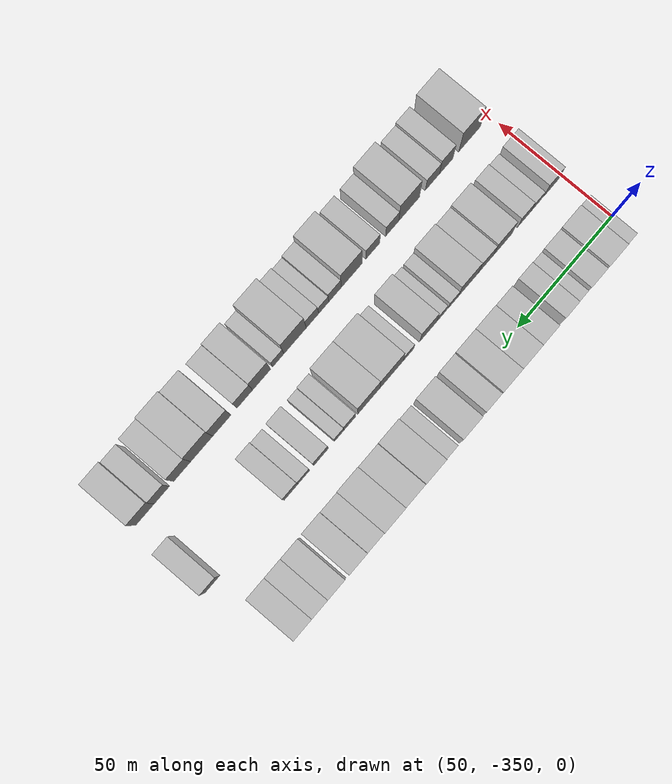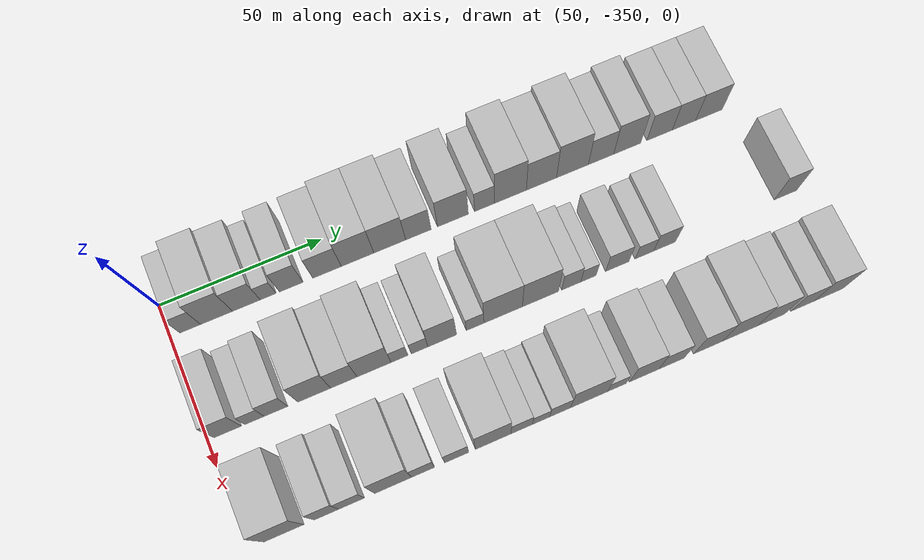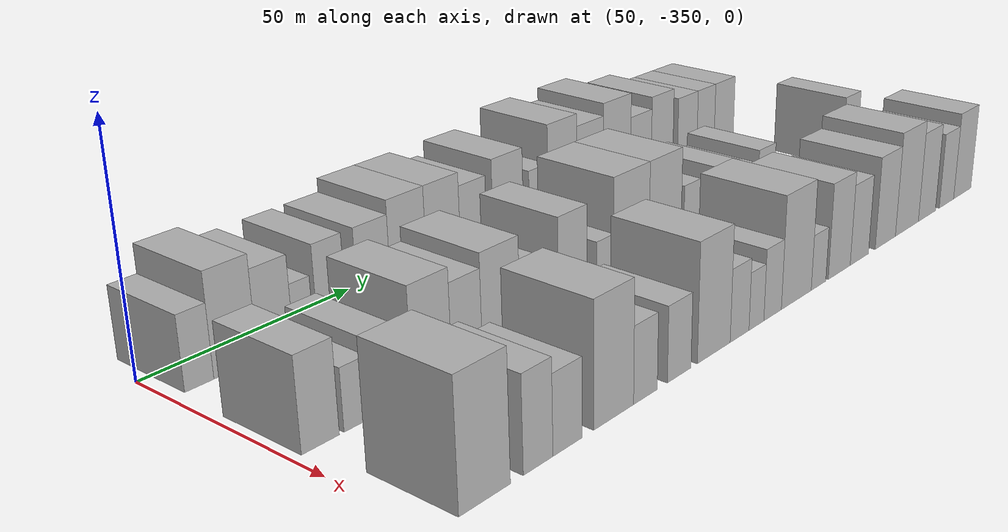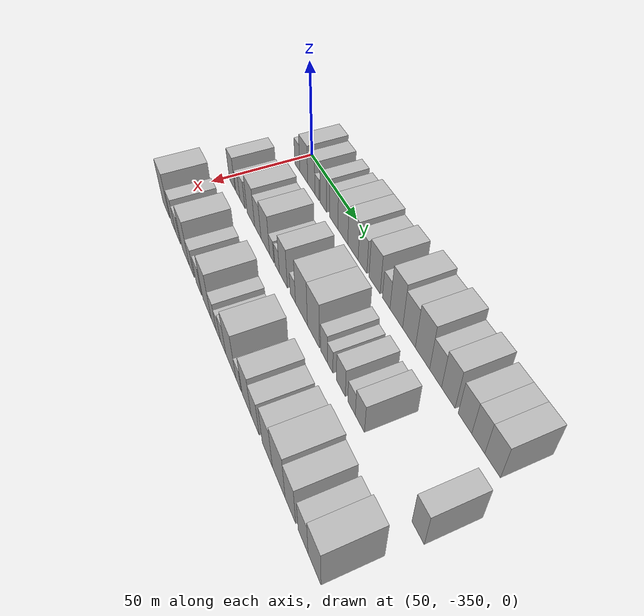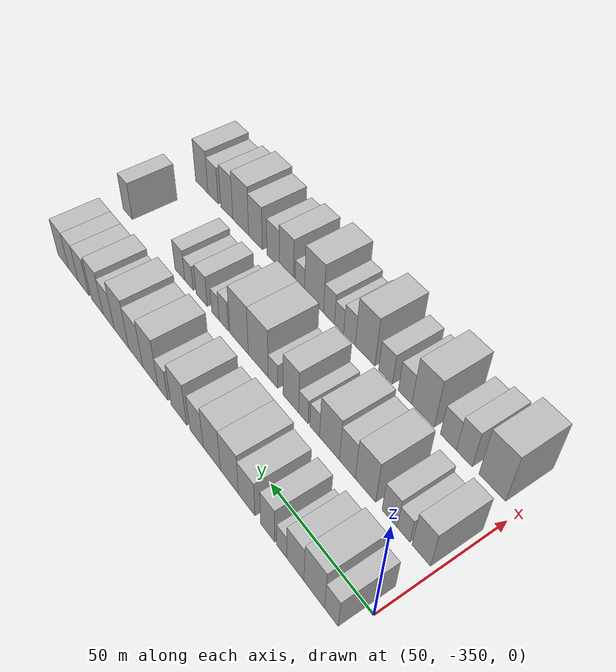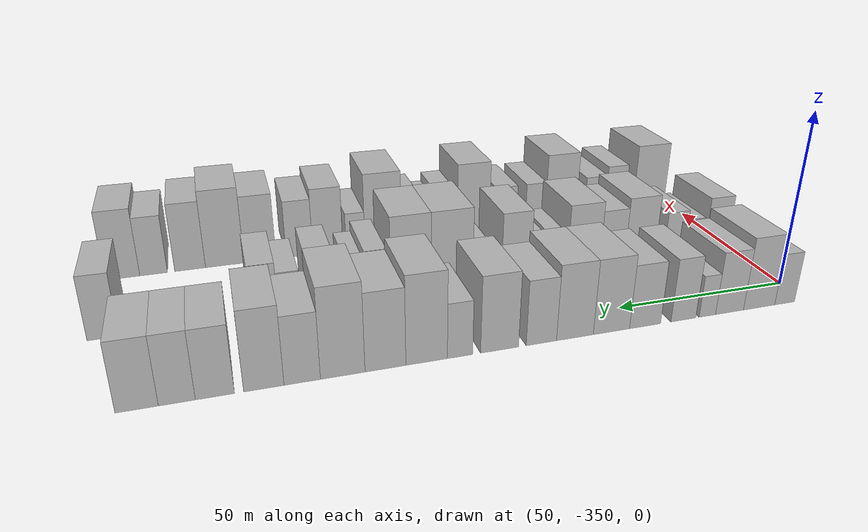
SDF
<sdf version="1.6">
 <world name="default">
  <model name="building_1">
   <static>1</static>
   <pose>50.0000 -343.8874 0 0.000000 0.000000 0.000000</pose>
   <link name="link">
    <pose>0 0 7.50 0 0 0</pose>
    <collision name="collision"><geometry><box><size>20.0000 6.2253 15.0000</size></box></geometry></collision>
    <visual name="visual">
     <cast_shadows>0</cast_shadows>
     <geometry><box><size>20.0000 6.2253 15.0000</size></box></geometry>
     <material>
      <script>
       <uri>model://HANNAS_wall/materials/scripts</uri>
       <uri>model://HANNAS_wall/materials/textures</uri>
       <name>vrc/HANNAS_wall</name>
      </script>
     </material>
    </visual>
   </link>
  </model>
  <model name="building_2">
   <static>1</static>
   <pose>50.0000 -335.9303 0 0.000000 0.000000 0.000000</pose>
   <link name="link">
    <pose>0 0 10.50 0 0 0</pose>
    <collision name="collision"><geometry><box><size>20.0000 9.6890 21.0000</size></box></geometry></collision>
    <visual name="visual">
     <cast_shadows>0</cast_shadows>
     <geometry><box><size>20.0000 9.6890 21.0000</size></box></geometry>
     <material>
      <script>
       <uri>model://HANNAS_wall/materials/scripts</uri>
       <uri>model://HANNAS_wall/materials/textures</uri>
       <name>vrc/HANNAS_wall</name>
      </script>
     </material>
    </visual>
   </link>
  </model>
  <model name="building_3">
   <static>1</static>
   <pose>50.0000 -326.8503 0 0.000000 0.000000 0.000000</pose>
   <link name="link">
    <pose>0 0 9.00 0 0 0</pose>
    <collision name="collision"><geometry><box><size>20.0000 8.4710 18.0000</size></box></geometry></collision>
    <visual name="visual">
     <cast_shadows>0</cast_shadows>
     <geometry><box><size>20.0000 8.4710 18.0000</size></box></geometry>
     <material>
      <script>
       <uri>model://HANNAS_wall/materials/scripts</uri>
       <uri>model://HANNAS_wall/materials/textures</uri>
       <name>vrc/HANNAS_wall</name>
      </script>
     </material>
    </visual>
   </link>
  </model>
  <model name="building_4">
   <static>1</static>
   <pose>50.0000 -320.1682 0 0.000000 0.000000 0.000000</pose>
   <link name="link">
    <pose>0 0 6.00 0 0 0</pose>
    <collision name="collision"><geometry><box><size>20.0000 4.8932 12.0000</size></box></geometry></collision>
    <visual name="visual">
     <cast_shadows>0</cast_shadows>
     <geometry><box><size>20.0000 4.8932 12.0000</size></box></geometry>
     <material>
      <script>
       <uri>model://HANNAS_wall/materials/scripts</uri>
       <uri>model://HANNAS_wall/materials/textures</uri>
       <name>vrc/HANNAS_wall</name>
      </script>
     </material>
    </visual>
   </link>
  </model>
  <model name="building_5">
   <static>1</static>
   <pose>50.0000 -313.0852 0 0.000000 0.000000 0.000000</pose>
   <link name="link">
    <pose>0 0 9.00 0 0 0</pose>
    <collision name="collision"><geometry><box><size>20.0000 7.2727 18.0000</size></box></geometry></collision>
    <visual name="visual">
     <cast_shadows>0</cast_shadows>
     <geometry><box><size>20.0000 7.2727 18.0000</size></box></geometry>
     <material>
      <script>
       <uri>model://HANNAS_wall/materials/scripts</uri>
       <uri>model://HANNAS_wall/materials/textures</uri>
       <name>vrc/HANNAS_wall</name>
      </script>
     </material>
    </visual>
   </link>
  </model>
  <model name="building_6">
   <static>1</static>
   <pose>50.0000 -302.0077 0 0.000000 0.000000 0.000000</pose>
   <link name="link">
    <pose>0 0 9.00 0 0 0</pose>
    <collision name="collision"><geometry><box><size>20.0000 8.8823 18.0000</size></box></geometry></collision>
    <visual name="visual">
     <cast_shadows>0</cast_shadows>
     <geometry><box><size>20.0000 8.8823 18.0000</size></box></geometry>
     <material>
      <script>
       <uri>model://HANNAS_wall/materials/scripts</uri>
       <uri>model://HANNAS_wall/materials/textures</uri>
       <name>vrc/HANNAS_wall</name>
      </script>
     </material>
    </visual>
   </link>
  </model>
  <model name="building_7">
   <static>1</static>
   <pose>50.0000 -292.5127 0 0.000000 0.000000 0.000000</pose>
   <link name="link">
    <pose>0 0 10.50 0 0 0</pose>
    <collision name="collision"><geometry><box><size>20.0000 10.1076 21.0000</size></box></geometry></collision>
    <visual name="visual">
     <cast_shadows>0</cast_shadows>
     <geometry><box><size>20.0000 10.1076 21.0000</size></box></geometry>
     <material>
      <script>
       <uri>model://HANNAS_wall/materials/scripts</uri>
       <uri>model://HANNAS_wall/materials/textures</uri>
       <name>vrc/HANNAS_wall</name>
      </script>
     </material>
    </visual>
   </link>
  </model>
  <model name="building_8">
   <static>1</static>
   <pose>50.0000 -282.4507 0 0.000000 0.000000 0.000000</pose>
   <link name="link">
    <pose>0 0 10.50 0 0 0</pose>
    <collision name="collision"><geometry><box><size>20.0000 10.0166 21.0000</size></box></geometry></collision>
    <visual name="visual">
     <cast_shadows>0</cast_shadows>
     <geometry><box><size>20.0000 10.0166 21.0000</size></box></geometry>
     <material>
      <script>
       <uri>model://HANNAS_wall/materials/scripts</uri>
       <uri>model://HANNAS_wall/materials/textures</uri>
       <name>vrc/HANNAS_wall</name>
      </script>
     </material>
    </visual>
   </link>
  </model>
  <model name="building_9">
   <static>1</static>
   <pose>50.0000 -273.4089 0 0.000000 0.000000 0.000000</pose>
   <link name="link">
    <pose>0 0 9.00 0 0 0</pose>
    <collision name="collision"><geometry><box><size>20.0000 8.0670 18.0000</size></box></geometry></collision>
    <visual name="visual">
     <cast_shadows>0</cast_shadows>
     <geometry><box><size>20.0000 8.0670 18.0000</size></box></geometry>
     <material>
      <script>
       <uri>model://HANNAS_wall/materials/scripts</uri>
       <uri>model://HANNAS_wall/materials/textures</uri>
       <name>vrc/HANNAS_wall</name>
      </script>
     </material>
    </visual>
   </link>
  </model>
  <model name="building_10">
   <static>1</static>
   <pose>50.0000 -262.4600 0 0.000000 0.000000 0.000000</pose>
   <link name="link">
    <pose>0 0 10.50 0 0 0</pose>
    <collision name="collision"><geometry><box><size>20.0000 9.8308 21.0000</size></box></geometry></collision>
    <visual name="visual">
     <cast_shadows>0</cast_shadows>
     <geometry><box><size>20.0000 9.8308 21.0000</size></box></geometry>
     <material>
      <script>
       <uri>model://HANNAS_wall/materials/scripts</uri>
       <uri>model://HANNAS_wall/materials/textures</uri>
       <name>vrc/HANNAS_wall</name>
      </script>
     </material>
    </visual>
   </link>
  </model>
  <model name="building_11">
   <static>1</static>
   <pose>50.0000 -252.3469 0 0.000000 0.000000 0.000000</pose>
   <link name="link">
    <pose>0 0 7.50 0 0 0</pose>
    <collision name="collision"><geometry><box><size>20.0000 6.3953 15.0000</size></box></geometry></collision>
    <visual name="visual">
     <cast_shadows>0</cast_shadows>
     <geometry><box><size>20.0000 6.3953 15.0000</size></box></geometry>
     <material>
      <script>
       <uri>model://HANNAS_wall/materials/scripts</uri>
       <uri>model://HANNAS_wall/materials/textures</uri>
       <name>vrc/HANNAS_wall</name>
      </script>
     </material>
    </visual>
   </link>
  </model>
  <model name="building_12">
   <static>1</static>
   <pose>50.0000 -244.0299 0 0.000000 0.000000 0.000000</pose>
   <link name="link">
    <pose>0 0 12.00 0 0 0</pose>
    <collision name="collision"><geometry><box><size>20.0000 10.2387 24.0000</size></box></geometry></collision>
    <visual name="visual">
     <cast_shadows>0</cast_shadows>
     <geometry><box><size>20.0000 10.2387 24.0000</size></box></geometry>
     <material>
      <script>
       <uri>model://HANNAS_wall/materials/scripts</uri>
       <uri>model://HANNAS_wall/materials/textures</uri>
       <name>vrc/HANNAS_wall</name>
      </script>
     </material>
    </visual>
   </link>
  </model>
  <model name="building_13">
   <static>1</static>
   <pose>50.0000 -234.0104 0 0.000000 0.000000 0.000000</pose>
   <link name="link">
    <pose>0 0 10.50 0 0 0</pose>
    <collision name="collision"><geometry><box><size>20.0000 9.8004 21.0000</size></box></geometry></collision>
    <visual name="visual">
     <cast_shadows>0</cast_shadows>
     <geometry><box><size>20.0000 9.8004 21.0000</size></box></geometry>
     <material>
      <script>
       <uri>model://HANNAS_wall/materials/scripts</uri>
       <uri>model://HANNAS_wall/materials/textures</uri>
       <name>vrc/HANNAS_wall</name>
      </script>
     </material>
    </visual>
   </link>
  </model>
  <model name="building_14">
   <static>1</static>
   <pose>50.0000 -223.8945 0 0.000000 0.000000 0.000000</pose>
   <link name="link">
    <pose>0 0 12.00 0 0 0</pose>
    <collision name="collision"><geometry><box><size>20.0000 10.4314 24.0000</size></box></geometry></collision>
    <visual name="visual">
     <cast_shadows>0</cast_shadows>
     <geometry><box><size>20.0000 10.4314 24.0000</size></box></geometry>
     <material>
      <script>
       <uri>model://HANNAS_wall/materials/scripts</uri>
       <uri>model://HANNAS_wall/materials/textures</uri>
       <name>vrc/HANNAS_wall</name>
      </script>
     </material>
    </visual>
   </link>
  </model>
  <model name="building_15">
   <static>1</static>
   <pose>50.0000 -214.5251 0 0.000000 0.000000 0.000000</pose>
   <link name="link">
    <pose>0 0 9.00 0 0 0</pose>
    <collision name="collision"><geometry><box><size>20.0000 8.3074 18.0000</size></box></geometry></collision>
    <visual name="visual">
     <cast_shadows>0</cast_shadows>
     <geometry><box><size>20.0000 8.3074 18.0000</size></box></geometry>
     <material>
      <script>
       <uri>model://HANNAS_wall/materials/scripts</uri>
       <uri>model://HANNAS_wall/materials/textures</uri>
       <name>vrc/HANNAS_wall</name>
      </script>
     </material>
    </visual>
   </link>
  </model>
  <model name="building_16">
   <static>1</static>
   <pose>50.0000 -205.8748 0 0.000000 0.000000 0.000000</pose>
   <link name="link">
    <pose>0 0 10.50 0 0 0</pose>
    <collision name="collision"><geometry><box><size>20.0000 8.9932 21.0000</size></box></geometry></collision>
    <visual name="visual">
     <cast_shadows>0</cast_shadows>
     <geometry><box><size>20.0000 8.9932 21.0000</size></box></geometry>
     <material>
      <script>
       <uri>model://HANNAS_wall/materials/scripts</uri>
       <uri>model://HANNAS_wall/materials/textures</uri>
       <name>vrc/HANNAS_wall</name>
      </script>
     </material>
    </visual>
   </link>
  </model>
  <model name="building_17">
   <static>1</static>
   <pose>50.0000 -195.1468 0 0.000000 0.000000 0.000000</pose>
   <link name="link">
    <pose>0 0 9.00 0 0 0</pose>
    <collision name="collision"><geometry><box><size>20.0000 8.4629 18.0000</size></box></geometry></collision>
    <visual name="visual">
     <cast_shadows>0</cast_shadows>
     <geometry><box><size>20.0000 8.4629 18.0000</size></box></geometry>
     <material>
      <script>
       <uri>model://HANNAS_wall/materials/scripts</uri>
       <uri>model://HANNAS_wall/materials/textures</uri>
       <name>vrc/HANNAS_wall</name>
      </script>
     </material>
    </visual>
   </link>
  </model>
  <model name="building_18">
   <static>1</static>
   <pose>50.0000 -187.0076 0 0.000000 0.000000 0.000000</pose>
   <link name="link">
    <pose>0 0 9.00 0 0 0</pose>
    <collision name="collision"><geometry><box><size>20.0000 7.8156 18.0000</size></box></geometry></collision>
    <visual name="visual">
     <cast_shadows>0</cast_shadows>
     <geometry><box><size>20.0000 7.8156 18.0000</size></box></geometry>
     <material>
      <script>
       <uri>model://HANNAS_wall/materials/scripts</uri>
       <uri>model://HANNAS_wall/materials/textures</uri>
       <name>vrc/HANNAS_wall</name>
      </script>
     </material>
    </visual>
   </link>
  </model>
  <model name="building_19">
   <static>1</static>
   <pose>50.0000 -178.6172 0 0.000000 0.000000 0.000000</pose>
   <link name="link">
    <pose>0 0 9.00 0 0 0</pose>
    <collision name="collision"><geometry><box><size>20.0000 8.9651 18.0000</size></box></geometry></collision>
    <visual name="visual">
     <cast_shadows>0</cast_shadows>
     <geometry><box><size>20.0000 8.9651 18.0000</size></box></geometry>
     <material>
      <script>
       <uri>model://HANNAS_wall/materials/scripts</uri>
       <uri>model://HANNAS_wall/materials/textures</uri>
       <name>vrc/HANNAS_wall</name>
      </script>
     </material>
    </visual>
   </link>
  </model>
  <model name="building_78">
   <static>1</static>
   <pose>82.0000 -343.9488 0 0.000000 0.000000 0.000000</pose>
   <link name="link">
    <pose>0 0 9.00 0 0 0</pose>
    <collision name="collision"><geometry><box><size>20.0000 8.1023 18.0000</size></box></geometry></collision>
    <visual name="visual">
     <cast_shadows>0</cast_shadows>
     <geometry><box><size>20.0000 8.1023 18.0000</size></box></geometry>
     <material>
      <script>
       <uri>model://HANNAS_wall/materials/scripts</uri>
       <uri>model://HANNAS_wall/materials/textures</uri>
       <name>vrc/HANNAS_wall</name>
      </script>
     </material>
    </visual>
   </link>
  </model>
  <model name="building_79">
   <static>1</static>
   <pose>82.0000 -336.0354 0 0.000000 0.000000 0.000000</pose>
   <link name="link">
    <pose>0 0 6.00 0 0 0</pose>
    <collision name="collision"><geometry><box><size>20.0000 5.7244 12.0000</size></box></geometry></collision>
    <visual name="visual">
     <cast_shadows>0</cast_shadows>
     <geometry><box><size>20.0000 5.7244 12.0000</size></box></geometry>
     <material>
      <script>
       <uri>model://HANNAS_wall/materials/scripts</uri>
       <uri>model://HANNAS_wall/materials/textures</uri>
       <name>vrc/HANNAS_wall</name>
      </script>
     </material>
    </visual>
   </link>
  </model>
  <model name="building_80">
   <static>1</static>
   <pose>82.0000 -329.6624 0 0.000000 0.000000 0.000000</pose>
   <link name="link">
    <pose>0 0 7.50 0 0 0</pose>
    <collision name="collision"><geometry><box><size>20.0000 7.0216 15.0000</size></box></geometry></collision>
    <visual name="visual">
     <cast_shadows>0</cast_shadows>
     <geometry><box><size>20.0000 7.0216 15.0000</size></box></geometry>
     <material>
      <script>
       <uri>model://HANNAS_wall/materials/scripts</uri>
       <uri>model://HANNAS_wall/materials/textures</uri>
       <name>vrc/HANNAS_wall</name>
      </script>
     </material>
    </visual>
   </link>
  </model>
  <model name="building_81">
   <static>1</static>
   <pose>82.0000 -318.2082 0 0.000000 0.000000 0.000000</pose>
   <link name="link">
    <pose>0 0 10.50 0 0 0</pose>
    <collision name="collision"><geometry><box><size>20.0000 9.8869 21.0000</size></box></geometry></collision>
    <visual name="visual">
     <cast_shadows>0</cast_shadows>
     <geometry><box><size>20.0000 9.8869 21.0000</size></box></geometry>
     <material>
      <script>
       <uri>model://HANNAS_wall/materials/scripts</uri>
       <uri>model://HANNAS_wall/materials/textures</uri>
       <name>vrc/HANNAS_wall</name>
      </script>
     </material>
    </visual>
   </link>
  </model>
  <model name="building_82">
   <static>1</static>
   <pose>82.0000 -309.2781 0 0.000000 0.000000 0.000000</pose>
   <link name="link">
    <pose>0 0 9.00 0 0 0</pose>
    <collision name="collision"><geometry><box><size>20.0000 7.9733 18.0000</size></box></geometry></collision>
    <visual name="visual">
     <cast_shadows>0</cast_shadows>
     <geometry><box><size>20.0000 7.9733 18.0000</size></box></geometry>
     <material>
      <script>
       <uri>model://HANNAS_wall/materials/scripts</uri>
       <uri>model://HANNAS_wall/materials/textures</uri>
       <name>vrc/HANNAS_wall</name>
      </script>
     </material>
    </visual>
   </link>
  </model>
  <model name="building_83">
   <static>1</static>
   <pose>82.0000 -300.0989 0 0.000000 0.000000 0.000000</pose>
   <link name="link">
    <pose>0 0 10.50 0 0 0</pose>
    <collision name="collision"><geometry><box><size>20.0000 10.3851 21.0000</size></box></geometry></collision>
    <visual name="visual">
     <cast_shadows>0</cast_shadows>
     <geometry><box><size>20.0000 10.3851 21.0000</size></box></geometry>
     <material>
      <script>
       <uri>model://HANNAS_wall/materials/scripts</uri>
       <uri>model://HANNAS_wall/materials/textures</uri>
       <name>vrc/HANNAS_wall</name>
      </script>
     </material>
    </visual>
   </link>
  </model>
  <model name="building_84">
   <static>1</static>
   <pose>82.0000 -292.3423 0 0.000000 0.000000 0.000000</pose>
   <link name="link">
    <pose>0 0 6.00 0 0 0</pose>
    <collision name="collision"><geometry><box><size>20.0000 5.1281 12.0000</size></box></geometry></collision>
    <visual name="visual">
     <cast_shadows>0</cast_shadows>
     <geometry><box><size>20.0000 5.1281 12.0000</size></box></geometry>
     <material>
      <script>
       <uri>model://HANNAS_wall/materials/scripts</uri>
       <uri>model://HANNAS_wall/materials/textures</uri>
       <name>vrc/HANNAS_wall</name>
      </script>
     </material>
    </visual>
   </link>
  </model>
  <model name="building_85">
   <static>1</static>
   <pose>82.0000 -286.2132 0 0.000000 0.000000 0.000000</pose>
   <link name="link">
    <pose>0 0 6.00 0 0 0</pose>
    <collision name="collision"><geometry><box><size>20.0000 5.1301 12.0000</size></box></geometry></collision>
    <visual name="visual">
     <cast_shadows>0</cast_shadows>
     <geometry><box><size>20.0000 5.1301 12.0000</size></box></geometry>
     <material>
      <script>
       <uri>model://HANNAS_wall/materials/scripts</uri>
       <uri>model://HANNAS_wall/materials/textures</uri>
       <name>vrc/HANNAS_wall</name>
      </script>
     </material>
    </visual>
   </link>
  </model>
  <model name="building_86">
   <static>1</static>
   <pose>82.0000 -279.2402 0 0.000000 0.000000 0.000000</pose>
   <link name="link">
    <pose>0 0 10.50 0 0 0</pose>
    <collision name="collision"><geometry><box><size>20.0000 8.8158 21.0000</size></box></geometry></collision>
    <visual name="visual">
     <cast_shadows>0</cast_shadows>
     <geometry><box><size>20.0000 8.8158 21.0000</size></box></geometry>
     <material>
      <script>
       <uri>model://HANNAS_wall/materials/scripts</uri>
       <uri>model://HANNAS_wall/materials/textures</uri>
       <name>vrc/HANNAS_wall</name>
      </script>
     </material>
    </visual>
   </link>
  </model>
  <model name="building_87">
   <static>1</static>
   <pose>82.0000 -269.0775 0 0.000000 0.000000 0.000000</pose>
   <link name="link">
    <pose>0 0 6.00 0 0 0</pose>
    <collision name="collision"><geometry><box><size>20.0000 5.5097 12.0000</size></box></geometry></collision>
    <visual name="visual">
     <cast_shadows>0</cast_shadows>
     <geometry><box><size>20.0000 5.5097 12.0000</size></box></geometry>
     <material>
      <script>
       <uri>model://HANNAS_wall/materials/scripts</uri>
       <uri>model://HANNAS_wall/materials/textures</uri>
       <name>vrc/HANNAS_wall</name>
      </script>
     </material>
    </visual>
   </link>
  </model>
  <model name="building_88">
   <static>1</static>
   <pose>82.0000 -260.3274 0 0.000000 0.000000 0.000000</pose>
   <link name="link">
    <pose>0 0 12.00 0 0 0</pose>
    <collision name="collision"><geometry><box><size>20.0000 11.9906 24.0000</size></box></geometry></collision>
    <visual name="visual">
     <cast_shadows>0</cast_shadows>
     <geometry><box><size>20.0000 11.9906 24.0000</size></box></geometry>
     <material>
      <script>
       <uri>model://HANNAS_wall/materials/scripts</uri>
       <uri>model://HANNAS_wall/materials/textures</uri>
       <name>vrc/HANNAS_wall</name>
      </script>
     </material>
    </visual>
   </link>
  </model>
  <model name="building_89">
   <static>1</static>
   <pose>82.0000 -248.6342 0 0.000000 0.000000 0.000000</pose>
   <link name="link">
    <pose>0 0 12.00 0 0 0</pose>
    <collision name="collision"><geometry><box><size>20.0000 11.3957 24.0000</size></box></geometry></collision>
    <visual name="visual">
     <cast_shadows>0</cast_shadows>
     <geometry><box><size>20.0000 11.3957 24.0000</size></box></geometry>
     <material>
      <script>
       <uri>model://HANNAS_wall/materials/scripts</uri>
       <uri>model://HANNAS_wall/materials/textures</uri>
       <name>vrc/HANNAS_wall</name>
      </script>
     </material>
    </visual>
   </link>
  </model>
  <model name="building_90">
   <static>1</static>
   <pose>82.0000 -238.9040 0 0.000000 0.000000 0.000000</pose>
   <link name="link">
    <pose>0 0 7.50 0 0 0</pose>
    <collision name="collision"><geometry><box><size>20.0000 6.0647 15.0000</size></box></geometry></collision>
    <visual name="visual">
     <cast_shadows>0</cast_shadows>
     <geometry><box><size>20.0000 6.0647 15.0000</size></box></geometry>
     <material>
      <script>
       <uri>model://HANNAS_wall/materials/scripts</uri>
       <uri>model://HANNAS_wall/materials/textures</uri>
       <name>vrc/HANNAS_wall</name>
      </script>
     </material>
    </visual>
   </link>
  </model>
  <model name="building_91">
   <static>1</static>
   <pose>82.0000 -233.4197 0 0.000000 0.000000 0.000000</pose>
   <link name="link">
    <pose>0 0 6.00 0 0 0</pose>
    <collision name="collision"><geometry><box><size>20.0000 4.9039 12.0000</size></box></geometry></collision>
    <visual name="visual">
     <cast_shadows>0</cast_shadows>
     <geometry><box><size>20.0000 4.9039 12.0000</size></box></geometry>
     <material>
      <script>
       <uri>model://HANNAS_wall/materials/scripts</uri>
       <uri>model://HANNAS_wall/materials/textures</uri>
       <name>vrc/HANNAS_wall</name>
      </script>
     </material>
    </visual>
   </link>
  </model>
  <model name="building_92">
   <static>1</static>
   <pose>82.0000 -224.2383 0 0.000000 0.000000 0.000000</pose>
   <link name="link">
    <pose>0 0 7.50 0 0 0</pose>
    <collision name="collision"><geometry><box><size>20.0000 7.4589 15.0000</size></box></geometry></collision>
    <visual name="visual">
     <cast_shadows>0</cast_shadows>
     <geometry><box><size>20.0000 7.4589 15.0000</size></box></geometry>
     <material>
      <script>
       <uri>model://HANNAS_wall/materials/scripts</uri>
       <uri>model://HANNAS_wall/materials/textures</uri>
       <name>vrc/HANNAS_wall</name>
      </script>
     </material>
    </visual>
   </link>
  </model>
  <model name="building_93">
   <static>1</static>
   <pose>82.0000 -215.5232 0 0.000000 0.000000 0.000000</pose>
   <link name="link">
    <pose>0 0 6.00 0 0 0</pose>
    <collision name="collision"><geometry><box><size>20.0000 5.9713 12.0000</size></box></geometry></collision>
    <visual name="visual">
     <cast_shadows>0</cast_shadows>
     <geometry><box><size>20.0000 5.9713 12.0000</size></box></geometry>
     <material>
      <script>
       <uri>model://HANNAS_wall/materials/scripts</uri>
       <uri>model://HANNAS_wall/materials/textures</uri>
       <name>vrc/HANNAS_wall</name>
      </script>
     </material>
    </visual>
   </link>
  </model>
  <model name="building_94">
   <static>1</static>
   <pose>82.0000 -209.0046 0 0.000000 0.000000 0.000000</pose>
   <link name="link">
    <pose>0 0 7.50 0 0 0</pose>
    <collision name="collision"><geometry><box><size>20.0000 7.0658 15.0000</size></box></geometry></collision>
    <visual name="visual">
     <cast_shadows>0</cast_shadows>
     <geometry><box><size>20.0000 7.0658 15.0000</size></box></geometry>
     <material>
      <script>
       <uri>model://HANNAS_wall/materials/scripts</uri>
       <uri>model://HANNAS_wall/materials/textures</uri>
       <name>vrc/HANNAS_wall</name>
      </script>
     </material>
    </visual>
   </link>
  </model>
  <model name="building_95">
   <static>1</static>
   <pose>82.0000 -169.2754 0 0.000000 0.000000 0.000000</pose>
   <link name="link">
    <pose>0 0 9.00 0 0 0</pose>
    <collision name="collision"><geometry><box><size>20.0000 7.4642 18.0000</size></box></geometry></collision>
    <visual name="visual">
     <cast_shadows>0</cast_shadows>
     <geometry><box><size>20.0000 7.4642 18.0000</size></box></geometry>
     <material>
      <script>
       <uri>model://HANNAS_wall/materials/scripts</uri>
       <uri>model://HANNAS_wall/materials/textures</uri>
       <name>vrc/HANNAS_wall</name>
      </script>
     </material>
    </visual>
   </link>
  </model>
  <model name="building_149">
   <static>1</static>
   <pose>114.0000 -339.2036 0 0.000000 0.000000 0.000000</pose>
   <link name="link">
    <pose>0 0 12.00 0 0 0</pose>
    <collision name="collision"><geometry><box><size>20.0000 11.5928 24.0000</size></box></geometry></collision>
    <visual name="visual">
     <cast_shadows>0</cast_shadows>
     <geometry><box><size>20.0000 11.5928 24.0000</size></box></geometry>
     <material>
      <script>
       <uri>model://HANNAS_wall/materials/scripts</uri>
       <uri>model://HANNAS_wall/materials/textures</uri>
       <name>vrc/HANNAS_wall</name>
      </script>
     </material>
    </visual>
   </link>
  </model>
  <model name="building_150">
   <static>1</static>
   <pose>114.0000 -326.8066 0 0.000000 0.000000 0.000000</pose>
   <link name="link">
    <pose>0 0 9.00 0 0 0</pose>
    <collision name="collision"><geometry><box><size>20.0000 7.2012 18.0000</size></box></geometry></collision>
    <visual name="visual">
     <cast_shadows>0</cast_shadows>
     <geometry><box><size>20.0000 7.2012 18.0000</size></box></geometry>
     <material>
      <script>
       <uri>model://HANNAS_wall/materials/scripts</uri>
       <uri>model://HANNAS_wall/materials/textures</uri>
       <name>vrc/HANNAS_wall</name>
      </script>
     </material>
    </visual>
   </link>
  </model>
  <model name="building_151">
   <static>1</static>
   <pose>114.0000 -319.4652 0 0.000000 0.000000 0.000000</pose>
   <link name="link">
    <pose>0 0 7.50 0 0 0</pose>
    <collision name="collision"><geometry><box><size>20.0000 7.4816 15.0000</size></box></geometry></collision>
    <visual name="visual">
     <cast_shadows>0</cast_shadows>
     <geometry><box><size>20.0000 7.4816 15.0000</size></box></geometry>
     <material>
      <script>
       <uri>model://HANNAS_wall/materials/scripts</uri>
       <uri>model://HANNAS_wall/materials/textures</uri>
       <name>vrc/HANNAS_wall</name>
      </script>
     </material>
    </visual>
   </link>
  </model>
  <model name="building_152">
   <static>1</static>
   <pose>114.0000 -307.2653 0 0.000000 0.000000 0.000000</pose>
   <link name="link">
    <pose>0 0 12.00 0 0 0</pose>
    <collision name="collision"><geometry><box><size>20.0000 10.9182 24.0000</size></box></geometry></collision>
    <visual name="visual">
     <cast_shadows>0</cast_shadows>
     <geometry><box><size>20.0000 10.9182 24.0000</size></box></geometry>
     <material>
      <script>
       <uri>model://HANNAS_wall/materials/scripts</uri>
       <uri>model://HANNAS_wall/materials/textures</uri>
       <name>vrc/HANNAS_wall</name>
      </script>
     </material>
    </visual>
   </link>
  </model>
  <model name="building_153">
   <static>1</static>
   <pose>114.0000 -298.3756 0 0.000000 0.000000 0.000000</pose>
   <link name="link">
    <pose>0 0 7.50 0 0 0</pose>
    <collision name="collision"><geometry><box><size>20.0000 6.8612 15.0000</size></box></geometry></collision>
    <visual name="visual">
     <cast_shadows>0</cast_shadows>
     <geometry><box><size>20.0000 6.8612 15.0000</size></box></geometry>
     <material>
      <script>
       <uri>model://HANNAS_wall/materials/scripts</uri>
       <uri>model://HANNAS_wall/materials/textures</uri>
       <name>vrc/HANNAS_wall</name>
      </script>
     </material>
    </visual>
   </link>
  </model>
  <model name="building_154">
   <static>1</static>
   <pose>114.0000 -288.3185 0 0.000000 0.000000 0.000000</pose>
   <link name="link">
    <pose>0 0 7.50 0 0 0</pose>
    <collision name="collision"><geometry><box><size>20.0000 7.2530 15.0000</size></box></geometry></collision>
    <visual name="visual">
     <cast_shadows>0</cast_shadows>
     <geometry><box><size>20.0000 7.2530 15.0000</size></box></geometry>
     <material>
      <script>
       <uri>model://HANNAS_wall/materials/scripts</uri>
       <uri>model://HANNAS_wall/materials/textures</uri>
       <name>vrc/HANNAS_wall</name>
      </script>
     </material>
    </visual>
   </link>
  </model>
  <model name="building_155">
   <static>1</static>
   <pose>114.0000 -277.3198 0 0.000000 0.000000 0.000000</pose>
   <link name="link">
    <pose>0 0 12.00 0 0 0</pose>
    <collision name="collision"><geometry><box><size>20.0000 10.7445 24.0000</size></box></geometry></collision>
    <visual name="visual">
     <cast_shadows>0</cast_shadows>
     <geometry><box><size>20.0000 10.7445 24.0000</size></box></geometry>
     <material>
      <script>
       <uri>model://HANNAS_wall/materials/scripts</uri>
       <uri>model://HANNAS_wall/materials/textures</uri>
       <name>vrc/HANNAS_wall</name>
      </script>
     </material>
    </visual>
   </link>
  </model>
  <model name="building_156">
   <static>1</static>
   <pose>114.0000 -268.7196 0 0.000000 0.000000 0.000000</pose>
   <link name="link">
    <pose>0 0 7.50 0 0 0</pose>
    <collision name="collision"><geometry><box><size>20.0000 6.4558 15.0000</size></box></geometry></collision>
    <visual name="visual">
     <cast_shadows>0</cast_shadows>
     <geometry><box><size>20.0000 6.4558 15.0000</size></box></geometry>
     <material>
      <script>
       <uri>model://HANNAS_wall/materials/scripts</uri>
       <uri>model://HANNAS_wall/materials/textures</uri>
       <name>vrc/HANNAS_wall</name>
      </script>
     </material>
    </visual>
   </link>
  </model>
  <model name="building_157">
   <static>1</static>
   <pose>114.0000 -262.8529 0 0.000000 0.000000 0.000000</pose>
   <link name="link">
    <pose>0 0 6.00 0 0 0</pose>
    <collision name="collision"><geometry><box><size>20.0000 5.2777 12.0000</size></box></geometry></collision>
    <visual name="visual">
     <cast_shadows>0</cast_shadows>
     <geometry><box><size>20.0000 5.2777 12.0000</size></box></geometry>
     <material>
      <script>
       <uri>model://HANNAS_wall/materials/scripts</uri>
       <uri>model://HANNAS_wall/materials/textures</uri>
       <name>vrc/HANNAS_wall</name>
      </script>
     </material>
    </visual>
   </link>
  </model>
  <model name="building_158">
   <static>1</static>
   <pose>114.0000 -257.0115 0 0.000000 0.000000 0.000000</pose>
   <link name="link">
    <pose>0 0 7.50 0 0 0</pose>
    <collision name="collision"><geometry><box><size>20.0000 6.4051 15.0000</size></box></geometry></collision>
    <visual name="visual">
     <cast_shadows>0</cast_shadows>
     <geometry><box><size>20.0000 6.4051 15.0000</size></box></geometry>
     <material>
      <script>
       <uri>model://HANNAS_wall/materials/scripts</uri>
       <uri>model://HANNAS_wall/materials/textures</uri>
       <name>vrc/HANNAS_wall</name>
      </script>
     </material>
    </visual>
   </link>
  </model>
  <model name="building_159">
   <static>1</static>
   <pose>114.0000 -248.0841 0 0.000000 0.000000 0.000000</pose>
   <link name="link">
    <pose>0 0 12.00 0 0 0</pose>
    <collision name="collision"><geometry><box><size>20.0000 11.4495 24.0000</size></box></geometry></collision>
    <visual name="visual">
     <cast_shadows>0</cast_shadows>
     <geometry><box><size>20.0000 11.4495 24.0000</size></box></geometry>
     <material>
      <script>
       <uri>model://HANNAS_wall/materials/scripts</uri>
       <uri>model://HANNAS_wall/materials/textures</uri>
       <name>vrc/HANNAS_wall</name>
      </script>
     </material>
    </visual>
   </link>
  </model>
  <model name="building_160">
   <static>1</static>
   <pose>114.0000 -239.4474 0 0.000000 0.000000 0.000000</pose>
   <link name="link">
    <pose>0 0 6.00 0 0 0</pose>
    <collision name="collision"><geometry><box><size>20.0000 5.8239 12.0000</size></box></geometry></collision>
    <visual name="visual">
     <cast_shadows>0</cast_shadows>
     <geometry><box><size>20.0000 5.8239 12.0000</size></box></geometry>
     <material>
      <script>
       <uri>model://HANNAS_wall/materials/scripts</uri>
       <uri>model://HANNAS_wall/materials/textures</uri>
       <name>vrc/HANNAS_wall</name>
      </script>
     </material>
    </visual>
   </link>
  </model>
  <model name="building_161">
   <static>1</static>
   <pose>114.0000 -230.9457 0 0.000000 0.000000 0.000000</pose>
   <link name="link">
    <pose>0 0 10.50 0 0 0</pose>
    <collision name="collision"><geometry><box><size>20.0000 9.1795 21.0000</size></box></geometry></collision>
    <visual name="visual">
     <cast_shadows>0</cast_shadows>
     <geometry><box><size>20.0000 9.1795 21.0000</size></box></geometry>
     <material>
      <script>
       <uri>model://HANNAS_wall/materials/scripts</uri>
       <uri>model://HANNAS_wall/materials/textures</uri>
       <name>vrc/HANNAS_wall</name>
      </script>
     </material>
    </visual>
   </link>
  </model>
  <model name="building_162">
   <static>1</static>
   <pose>114.0000 -222.3636 0 0.000000 0.000000 0.000000</pose>
   <link name="link">
    <pose>0 0 9.00 0 0 0</pose>
    <collision name="collision"><geometry><box><size>20.0000 7.9848 18.0000</size></box></geometry></collision>
    <visual name="visual">
     <cast_shadows>0</cast_shadows>
     <geometry><box><size>20.0000 7.9848 18.0000</size></box></geometry>
     <material>
      <script>
       <uri>model://HANNAS_wall/materials/scripts</uri>
       <uri>model://HANNAS_wall/materials/textures</uri>
       <name>vrc/HANNAS_wall</name>
      </script>
     </material>
    </visual>
   </link>
  </model>
  <model name="building_163">
   <static>1</static>
   <pose>114.0000 -210.7123 0 0.000000 0.000000 0.000000</pose>
   <link name="link">
    <pose>0 0 10.50 0 0 0</pose>
    <collision name="collision"><geometry><box><size>20.0000 9.3178 21.0000</size></box></geometry></collision>
    <visual name="visual">
     <cast_shadows>0</cast_shadows>
     <geometry><box><size>20.0000 9.3178 21.0000</size></box></geometry>
     <material>
      <script>
       <uri>model://HANNAS_wall/materials/scripts</uri>
       <uri>model://HANNAS_wall/materials/textures</uri>
       <name>vrc/HANNAS_wall</name>
      </script>
     </material>
    </visual>
   </link>
  </model>
  <model name="building_164">
   <static>1</static>
   <pose>114.0000 -200.4996 0 0.000000 0.000000 0.000000</pose>
   <link name="link">
    <pose>0 0 12.00 0 0 0</pose>
    <collision name="collision"><geometry><box><size>20.0000 11.1076 24.0000</size></box></geometry></collision>
    <visual name="visual">
     <cast_shadows>0</cast_shadows>
     <geometry><box><size>20.0000 11.1076 24.0000</size></box></geometry>
     <material>
      <script>
       <uri>model://HANNAS_wall/materials/scripts</uri>
       <uri>model://HANNAS_wall/materials/textures</uri>
       <name>vrc/HANNAS_wall</name>
      </script>
     </material>
    </visual>
   </link>
  </model>
  <model name="building_165">
   <static>1</static>
   <pose>114.0000 -190.6299 0 0.000000 0.000000 0.000000</pose>
   <link name="link">
    <pose>0 0 10.50 0 0 0</pose>
    <collision name="collision"><geometry><box><size>20.0000 8.6319 21.0000</size></box></geometry></collision>
    <visual name="visual">
     <cast_shadows>0</cast_shadows>
     <geometry><box><size>20.0000 8.6319 21.0000</size></box></geometry>
     <material>
      <script>
       <uri>model://HANNAS_wall/materials/scripts</uri>
       <uri>model://HANNAS_wall/materials/textures</uri>
       <name>vrc/HANNAS_wall</name>
      </script>
     </material>
    </visual>
   </link>
  </model>
  <model name="building_166">
   <static>1</static>
   <pose>114.0000 -180.5152 0 0.000000 0.000000 0.000000</pose>
   <link name="link">
    <pose>0 0 9.00 0 0 0</pose>
    <collision name="collision"><geometry><box><size>20.0000 7.5974 18.0000</size></box></geometry></collision>
    <visual name="visual">
     <cast_shadows>0</cast_shadows>
     <geometry><box><size>20.0000 7.5974 18.0000</size></box></geometry>
     <material>
      <script>
       <uri>model://HANNAS_wall/materials/scripts</uri>
       <uri>model://HANNAS_wall/materials/textures</uri>
       <name>vrc/HANNAS_wall</name>
      </script>
     </material>
    </visual>
   </link>
  </model>
  <model name="building_167">
   <static>1</static>
   <pose>114.0000 -171.9996 0 0.000000 0.000000 0.000000</pose>
   <link name="link">
    <pose>0 0 10.50 0 0 0</pose>
    <collision name="collision"><geometry><box><size>20.0000 9.4338 21.0000</size></box></geometry></collision>
    <visual name="visual">
     <cast_shadows>0</cast_shadows>
     <geometry><box><size>20.0000 9.4338 21.0000</size></box></geometry>
     <material>
      <script>
       <uri>model://HANNAS_wall/materials/scripts</uri>
       <uri>model://HANNAS_wall/materials/textures</uri>
       <name>vrc/HANNAS_wall</name>
      </script>
     </material>
    </visual>
   </link>
  </model>
 </world>
</sdf>
